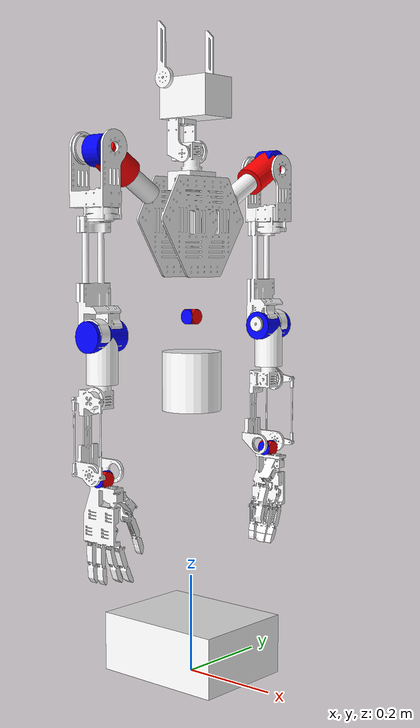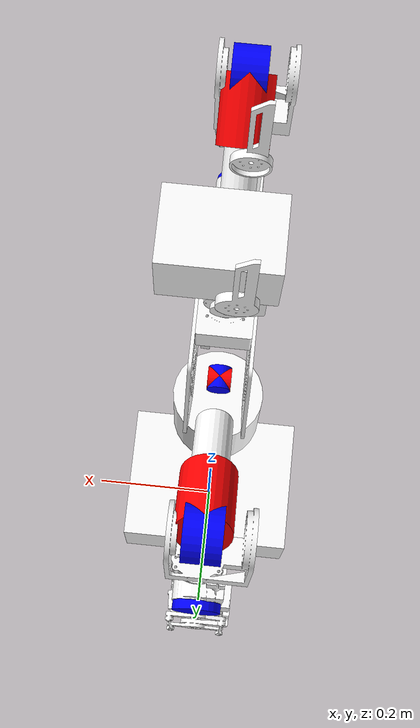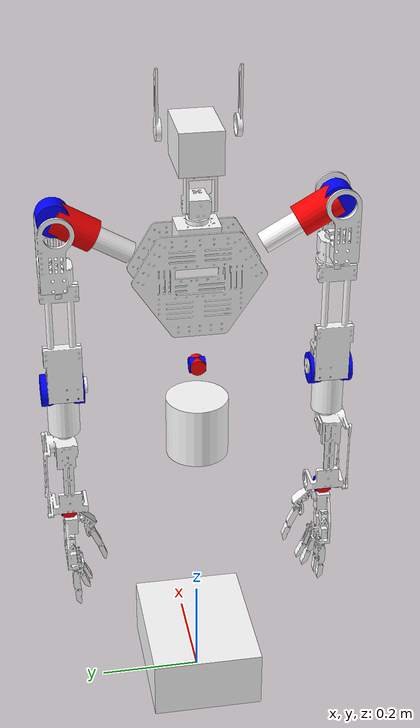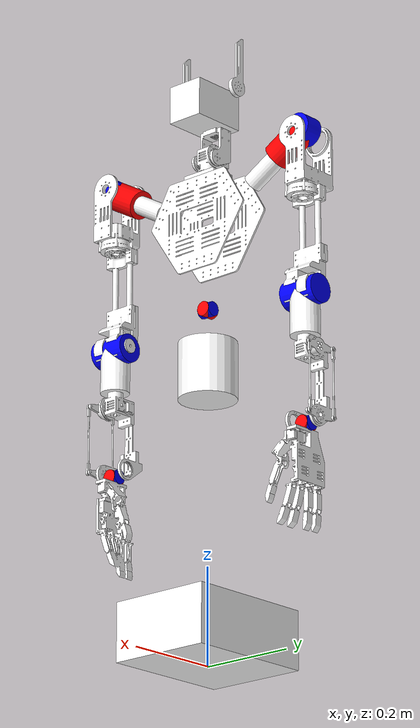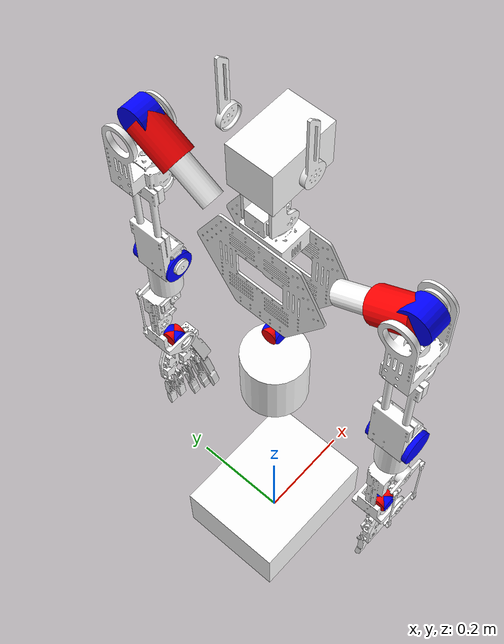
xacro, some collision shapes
<?xml version="1.0"?>

<!--Note that the inertia values are placeholder and need to be updated for proper physics simulation-->

<robot name="rx1" xmlns:xacro="http://ros.org/wiki/xacro">
    <xacro:property name="rx1_pi" value="3.1415" />
    <xacro:property name="motor_torque" value="50.0"/>
    <xacro:property name="motor_vec" value="15"/>

    <material name="red">
        <color rgba="1 0 0 1"/>
    </material>

    <material name="white">
        <color rgba="1 1 1 1"/>
    </material>

    <material name="blue">
        <color rgba="0 0 1 1"/>
    </material>

    <xacro:macro name="default_inertial" params="mass">
        <inertial>
            <mass value="${mass}" />
            <inertia ixx="1.0" ixy="0.0" ixz="0.0" iyy="1.0" iyz="0.0" izz="1.0" />
        </inertial>
    </xacro:macro>

    <link name="base_link">
        <inertial>
            <mass value="5.0" />
            <!-- Keep the root inertia physically valid for Gazebo Harmonic. -->
            <inertia ixx="0.18" ixy="0.0" ixz="0.0" iyy="0.16" iyz="0.0" izz="0.2" />
        </inertial>

        <visual>
            <geometry>
                <mesh filename="package://rx1_description/meshes/base_link.stl"/>
            </geometry>
            <material name="white"/>
        </visual>
        <collision>
            <geometry>
                <box size="0.28 0.22 0.12" />
            </geometry>
            <origin rpy="0 0 0" xyz="0 0 0.06"/>
        </collision>
        <collision>
            <geometry>
                <cylinder length="0.46" radius="0.045" />
            </geometry>
            <origin rpy="0 0 0" xyz="0 0 0.35"/>
        </collision>
    </link>

    <!--                            TORSO START                         -->
    <link name="torso_yaw_link">
        <inertial>
            <mass value="5.0" />
            <inertia ixx="1.0" ixy="0.0" ixz="0.0" iyy="1.0" iyz="0.0" izz="1.0" />
        </inertial>
        <visual>
            <geometry>
                <mesh filename="package://rx1_description/meshes/torso_yaw_link.stl"/>
            </geometry>
            <origin rpy="0 0 0" xyz="0 0 0"/>
            <material name="white"/>
        </visual>
        <collision>
            <geometry>
                <cylinder length="0.12" radius="0.06" />
            </geometry>
            <origin rpy="0 0 0" xyz="0 0 0.02"/>
        </collision>
    </link>
    <joint name="base2torso_yaw_joint" type="revolute">
        <axis xyz="0 0 1" />
        <limit effort="${motor_torque}" lower="${-0.5*rx1_pi}" upper="${0.5*rx1_pi}" velocity="${motor_vec}"/>
        <dynamics damping="0.5" friction="5.0" />
        <origin xyz="0 0 0.5825" rpy="0 0 0" />
        <parent link="base_link" />
        <child link="torso_yaw_link" />
    </joint>

    <link name="torso_pitch_link">
        <inertial>
            <mass value="0.5" />
            <inertia ixx="1.0" ixy="0.0" ixz="0.0" iyy="1.0" iyz="0.0" izz="1.0" />
        </inertial>
        <visual>
            <geometry>
                <cylinder length="0.03" radius="0.015" />
            </geometry>
            <origin rpy="${0.5*rx1_pi} 0 0" xyz="0 0 0"/>
            <material name="blue"/>
        </visual>
        <collision>
            <geometry>
                <cylinder length="0.03" radius="0.01" />
            </geometry>
            <origin rpy="${0.5*rx1_pi} 0 0" xyz="0 0 0"/>
        </collision>
    </link>
    <joint name="torso_yaw2pitch_joint" type="revolute">
        <axis xyz="0 1 0" />
        <limit effort="${motor_torque}" lower="${-0.25*rx1_pi}" upper="${0.25*rx1_pi}" velocity="${motor_vec}"/>
        <dynamics damping="0.5" friction="0.1" />
        <origin xyz="0 0 0.15" rpy="0 0 0" />
        <parent link="torso_yaw_link" />
        <child link="torso_pitch_link" />
    </joint>

    <link name="torso_roll_link">
        <inertial>
            <mass value="0.5" />
            <inertia ixx="1.0" ixy="0.0" ixz="0.0" iyy="1.0" iyz="0.0" izz="1.0" />
        </inertial>
        <visual>
            <geometry>
                <cylinder length="0.03" radius="0.015" />
            </geometry>
            <origin rpy="0 ${0.5*rx1_pi} 0" xyz="0 0 0"/>
            <material name="red"/>
        </visual>
        <collision>
            <geometry>
                <cylinder length="0.03" radius="0.01" />
            </geometry>
            <origin rpy="0 ${0.5*rx1_pi} 0" xyz="0 0 0"/>
        </collision>
    </link>
    <joint name="torso_pitch2roll_joint" type="revolute">
        <axis xyz="1 0 0" />
        <limit effort="${motor_torque}" lower="${-0.25*rx1_pi}" upper="${0.25*rx1_pi}" velocity="${motor_vec}"/>
        <dynamics damping="0.5" friction="0.1" />
        <origin xyz="0 0 0" rpy="0 0 0" />
        <parent link="torso_pitch_link" />
        <child link="torso_roll_link" />
    </joint>

    <link name="torso_link">
        <inertial>
            <mass value="1" />
            <inertia ixx="4.16666667e-06" ixy="0.0" ixz="0.0" iyy="6.6666666667e-6" iyz="0.0" izz="04.16666667e-06" />
        </inertial>
        <visual>
            <geometry>
                <!--box size="0.03 0.12 0.02" /-->
                <mesh filename="package://rx1_description/meshes/torso_link.stl"/>
            </geometry>
            <origin rpy="0 0 0" xyz="0 0 0"/>
            <material name="white"/>
        </visual>
        <collision>
            <geometry>
                <box size="0.16 0.12 0.16" />
            </geometry>
            <origin rpy="0 0 0" xyz="0 0 0.02"/>
        </collision>
    </link>
    <joint name="torso_roll2torso_joint" type="fixed">
        <origin xyz="0 0 0.08" rpy="0 0 0" />
        <parent link="torso_roll_link" />
        <child link="torso_link" />
    </joint>
    <!--                            TORSO END                         -->

    <!--                            HEAD START                        -->
    <link name="head_base_link">
        <inertial>
            <mass value="0.05" />
            <inertia ixx="4.16666667e-06" ixy="0.0" ixz="0.0" iyy="6.6666666667e-6" iyz="0.0" izz="04.16666667e-06" />
        </inertial>
        <visual>
            <geometry>
                <mesh filename="package://rx1_description/meshes/head/head_base_link.stl"/>
            </geometry>
            <origin rpy="0 0 0" xyz="0 0 0"/>
            <material name="white"/>
        </visual>
        <collision>
            <geometry>
                <box size="0.12 0.10 0.08" />
            </geometry>
            <origin rpy="0 0 0" xyz="0 0 0"/>
        </collision>
    </link>
    <joint name="torso2head_base_joint" type="fixed">
        <origin xyz="0 0 0.21" rpy="0 0 0" />
        <parent link="torso_link" />
        <child link="head_base_link" />
    </joint>

    <link name="neck_yaw_link">
        <inertial>
            <mass value="0.05" />
            <inertia ixx="4.16666667e-06" ixy="0.0" ixz="0.0" iyy="6.6666666667e-6" iyz="0.0" izz="04.16666667e-06" />
        </inertial>
        <visual>
            <geometry>
                <mesh filename="package://rx1_description/meshes/head/neck_yaw_link.stl"/>
            </geometry>
            <origin rpy="0 0 0" xyz="0 0 0"/>
            <material name="white"/>
        </visual>
        <collision>
            <geometry>
                <cylinder length="0.05" radius="0.04" />
            </geometry>
            <origin rpy="0 0 0" xyz="0 0 0.01"/>
        </collision>
    </link>
    <joint name="head_base2neck_yaw_joint" type="revolute">
        <axis xyz="0 0 1" />
        <limit effort="${motor_torque}" lower="${-0.5*rx1_pi}" upper="${0.5*rx1_pi}" velocity="${motor_vec}"/>
        <dynamics damping="0.5" friction="0.1" />
        <origin xyz="0 0 0" rpy="0 0 0" />
        <parent link="head_base_link" />
        <child link="neck_yaw_link" />
    </joint>

    <link name="neck_pitch_link">
        <inertial>
            <mass value="0.05" />
            <inertia ixx="4.16666667e-06" ixy="0.0" ixz="0.0" iyy="6.6666666667e-6" iyz="0.0" izz="04.16666667e-06" />
        </inertial>
        <visual>
            <geometry>
                <mesh filename="package://rx1_description/meshes/head/neck_pitch_link.stl"/>
            </geometry>
            <origin rpy="0 0 0" xyz="0 0 0"/>
            <material name="white"/>
        </visual>
        <collision>
            <geometry>
                <box size="0.09 0.06 0.06" />
            </geometry>
            <origin rpy="0 0 0" xyz="0 0 0.01"/>
        </collision>
    </link>
    <joint name="neck_yaw2pitch_joint" type="revolute">
        <axis xyz="0 1 0" />
        <limit effort="${motor_torque}" lower="${-0.5*rx1_pi}" upper="${0.5*rx1_pi}" velocity="${motor_vec}"/>
        <dynamics damping="0.5" friction="0.1" />
        <origin xyz="0 0 0.035" rpy="0 0 0" />
        <parent link="neck_yaw_link" />
        <child link="neck_pitch_link" />
    </joint>

    <link name="head_depth_cam_mount_link">
        <inertial>
            <mass value="0.05" />
            <inertia ixx="4.16666667e-06" ixy="0.0" ixz="0.0" iyy="6.6666666667e-6" iyz="0.0" izz="04.16666667e-06" />
        </inertial>
        <visual>
            <geometry>
                <mesh filename="package://rx1_description/meshes/head/head_depth_cam_mount_link.stl"/>
            </geometry>
            <origin rpy="0 0 0" xyz="0 0 0"/>
            <material name="white"/>
        </visual>
        <collision>
            <geometry>
                <box size="0.12 0.08 0.08" />
            </geometry>
            <origin rpy="0 0 0" xyz="0.02 0 0.01"/>
        </collision>
    </link>
    <joint name="neck_pitch2head_depth_cam_mount_joint" type="revolute">
        <axis xyz="1 0 0" />
        <limit effort="${motor_torque}" lower="${-0.5*rx1_pi}" upper="${0.5*rx1_pi}" velocity="${motor_vec}"/>
        <dynamics damping="0.1" friction="0.0" />
        <origin xyz="-0.01 0 0.1" rpy="0 0 0" />
        <parent link="neck_pitch_link" />
        <child link="head_depth_cam_mount_link" />
    </joint>

    <link name="camera_link">
        <inertial>
            <mass value="0.05" />
            <inertia ixx="4.16666667e-06" ixy="0.0" ixz="0.0" iyy="6.6666666667e-6" iyz="0.0" izz="04.16666667e-06" />
        </inertial>
        <visual>
            <geometry>
                <box size="0.01 0.01 0.01" />
            </geometry>
            <origin rpy="0 0 0" xyz="0 0 0"/>
            <material name="white"/>
        </visual>
        <collision>
            <geometry>
                <box size="0.01 0.01 0.01" />
            </geometry>
            <origin rpy="0 0 0" xyz="0 0 0"/>
        </collision>
    </link>
    <joint name="head_depth_cam_mount2camera_joint" type="fixed">
        <origin xyz="0.05 0 0.03" rpy="0 0 0" />
        <parent link="head_depth_cam_mount_link" />
        <child link="camera_link" />
    </joint>

    <link name="right_ear_link">
        <inertial>
            <mass value="0.05" />
            <inertia ixx="4.16666667e-06" ixy="0.0" ixz="0.0" iyy="6.6666666667e-6" iyz="0.0" izz="04.16666667e-06" />
        </inertial>
        <visual>
            <geometry>
                <mesh filename="package://rx1_description/meshes/head/right_ear_link.stl"/>
            </geometry>
            <origin rpy="0 0 0" xyz="0 0 0"/>
            <material name="white"/>
        </visual>
        <collision>
            <geometry>
                <box size="0.02 0.04 0.05" />
            </geometry>
            <origin rpy="0 0 0" xyz="0 -0.005 0"/>
        </collision>
    </link>
    <joint name="head_depth_cam_mount2right_ear_joint" type="revolute">
        <axis xyz="0 1 0" />
        <limit effort="${motor_torque}" lower="${-0.5*rx1_pi}" upper="${0.5*rx1_pi}" velocity="${motor_vec}"/>
        <dynamics damping="0.1" friction="0.0" />
        <origin xyz="0 -0.065 0.045" rpy="0 0 0" />
        <parent link="head_depth_cam_mount_link" />
        <child link="right_ear_link" />
    </joint>

    <link name="left_ear_link">
        <inertial>
            <mass value="0.05" />
            <inertia ixx="4.16666667e-06" ixy="0.0" ixz="0.0" iyy="6.6666666667e-6" iyz="0.0" izz="04.16666667e-06" />
        </inertial>
        <visual>
            <geometry>
                <mesh filename="package://rx1_description/meshes/head/left_ear_link.stl"/>
            </geometry>
            <origin rpy="0 0 0" xyz="0 0 0"/>
            <material name="white"/>
        </visual>
        <collision>
            <geometry>
                <box size="0.02 0.04 0.05" />
            </geometry>
            <origin rpy="0 0 0" xyz="0 0.005 0"/>
        </collision>
    </link>
    <joint name="head_depth_cam_mount2left_ear_joint" type="revolute">
        <axis xyz="0 1 0" />
        <limit effort="${motor_torque}" lower="${-0.5*rx1_pi}" upper="${0.5*rx1_pi}" velocity="${motor_vec}"/>
        <dynamics damping="0.1" friction="0.0" />
        <origin xyz="0 0.065 0.045" rpy="0 0 0" />
        <parent link="head_depth_cam_mount_link" />
        <child link="left_ear_link" />
    </joint>

    <!--                            HEAD END                           -->

    <!--                            ARM START                          -->
    <xacro:macro name="arm" params="prefix side">
        <link name="${prefix}_shoul_base_link">
            <inertial>
                <mass value="0.2" />
                <inertia ixx="4.16666667e-06" ixy="0.0" ixz="0.0" iyy="6.6666666667e-6" iyz="0.0" izz="04.16666667e-06" />
            </inertial>

            <visual>
                <geometry>
                    <cylinder length="0.075" radius="0.02" />
                </geometry>
                <origin rpy="0 0 0" xyz="0 0 0.0375"/>
                <material name="white"/>
            </visual>
            <collision>
                <geometry>
                    <cylinder length="0.075" radius="0.02" />
                </geometry>
                <origin rpy="0 0 0" xyz="0 0 0.0375"/>
            </collision>
        </link>
        <joint name="head_base2${prefix}_shoul_base_joint" type="fixed">
            <origin xyz="0 ${-0.12*side} -0.05" rpy="${0.3333*rx1_pi*side} 0 0" />
            <parent link="head_base_link" />
            <child link="${prefix}_shoul_base_link" />
        </joint>

        <link name="${prefix}_shoul_link">
            <inertial>
                <mass value="0.2" />
                <inertia ixx="1.0" ixy="0.0" ixz="0.0" iyy="1.0" iyz="0.0" izz="1.0" />
            </inertial>
            <visual>
                <geometry>
                    <cylinder length="0.08" radius="0.03" />
                </geometry>
                <origin rpy="0 0 0" xyz="0 0 0.04"/>
                <material name="red"/>
            </visual>
            <collision>
                <geometry>
                    <cylinder length="0.08" radius="0.03" />
                </geometry>
                <origin rpy="0 0 0" xyz="0 0 0.04"/>
            </collision>
        </link>
        <joint name="${prefix}_shoul_base2shoul_joint" type="revolute">
            <axis xyz="0 0 1" />
                <limit effort="${motor_torque}" lower="${-0.8*rx1_pi}" upper="${0.8*rx1_pi}" velocity="${motor_vec}"/>
            <dynamics damping="0.5" friction="0.1" />
            <origin xyz="0 0 0.075" rpy="0 0 0" />
            <parent link="${prefix}_shoul_base_link" />
            <child link="${prefix}_shoul_link" />
        </joint>

        <link name="${prefix}_shoul_rot_link">
            <inertial>
                <mass value="0.2" />
                <inertia ixx="1.0" ixy="0.0" ixz="0.0" iyy="1.0" iyz="0.0" izz="1.0" />
            </inertial>
            <visual>
                <geometry>
                    <cylinder length="0.04" radius="0.03" />
                </geometry>
                <origin rpy="0 ${0.5*rx1_pi} 0" xyz="0 0 0"/>
                <material name="blue"/>
            </visual>
            <collision>
                <geometry>
                    <cylinder length="0.04" radius="0.03" />
                </geometry>
                <origin rpy="0 ${0.5*rx1_pi} 0" xyz="0 0 0"/>
            </collision>
        </link>
        <joint name="${prefix}_shoul2shoul_rot_joint" type="revolute">
            <axis xyz="1 0 0" />
            <xacro:if value="${prefix == 'right'}">
                <limit effort="${motor_torque}" lower="${-0.5*rx1_pi}" upper="${0.16*rx1_pi}" velocity="${motor_vec}"/>
                <dynamics damping="0.5" friction="0.1" />
            </xacro:if>
            <xacro:if value="${prefix == 'left'}">
                <limit effort="${motor_torque}" lower="${-0.16*rx1_pi}" upper="${0.5*rx1_pi}" velocity="${motor_vec}"/>
                <dynamics damping="0.5" friction="0.1" />
            </xacro:if>
            <origin xyz="0 0 0.08" rpy="${-0.3333*rx1_pi*side} 0 0" />
            <parent link="${prefix}_shoul_link" />
            <child link="${prefix}_shoul_rot_link" />
        </joint>

        <link name="${prefix}_upper_arm_link">
           <inertial>
                <mass value="0.1" />
                <inertia ixx="1.0" ixy="0.0" ixz="0.0" iyy="1.0" iyz="0.0" izz="1.0" />
           </inertial>
           <visual>
                <geometry>
                    <!--cylinder length="0.085" radius="0.015" /-->
                    <mesh filename="package://rx1_description/meshes/${prefix}_arm/${prefix}_upper_arm_link.stl"/>
                </geometry>
                <origin rpy="0 0 0" xyz="0 0 0"/>
                <material name="white"/>
            </visual>
            <collision>
                <geometry>
                    <box size="0.08 0.08 0.14" />
                </geometry>
                <origin rpy="0 0 0" xyz="0 0 -0.03"/>
            </collision>
        </link>
        <joint name="${prefix}_shoul_rot2upper_arm_joint" type="fixed">
            <origin xyz="0 0 -0.0625" rpy="0 0 0" />
            <parent link="${prefix}_shoul_rot_link" />
            <child link="${prefix}_upper_arm_link" />
        </joint>

        <link name="${prefix}_armrot_link">
            <inertial>
                <mass value="0.1" />
                <inertia ixx="1.0" ixy="0.0" ixz="0.0" iyy="1.0" iyz="0.0" izz="1.0" />
            </inertial>
            <visual>
                <geometry>
                    <!--cylinder length="0.22" radius="0.03" /-->
                    <mesh filename="package://rx1_description/meshes/${prefix}_arm/${prefix}_elbow_link.stl"/>
                </geometry>
                <origin rpy="0 0 0" xyz="0 0 -0.11"/>
                <material name="white"/>
            </visual>
            <collision>
                <geometry>
                    <cylinder length="0.22" radius="0.03" />
                </geometry>
                <origin rpy="0 0 0" xyz="0 0 -0.11"/>
            </collision>
        </link>
        <joint name="${prefix}_arm2armrot_joint" type="revolute">
            <axis xyz="0 0 1" />
            <limit effort="${motor_torque}" lower="${-0.5*rx1_pi}" upper="${0.5*rx1_pi}" velocity="${motor_vec}"/>
            <dynamics damping="0.1" friction="0.1" />
            <origin xyz="0 0 -0.0625" rpy="0 0 0" />
            <parent link="${prefix}_upper_arm_link" />
            <child link="${prefix}_armrot_link" />
        </joint>

        <link name="${prefix}_elbow_link">
            <inertial>
                <mass value="0.1" />
                <inertia ixx="1.0" ixy="0.0" ixz="0.0" iyy="1.0" iyz="0.0" izz="1.0" />
            </inertial>
            <visual>
                <geometry>
                    <cylinder length="0.08" radius="0.03" />
                </geometry>
                <origin rpy="0 ${0.5*rx1_pi*side} -${0.5*rx1_pi}" xyz="0 0 0"/>
                <material name="blue"/>
            </visual>
            <collision>
                <geometry>
                    <cylinder length="0.08" radius="0.03" />
                </geometry>
                <origin rpy="0 ${0.5*rx1_pi*side} -${0.5*rx1_pi}" xyz="0 0 0"/>
            </collision>
        </link>
        <joint name="${prefix}_armrot2elbow_joint" type="revolute">
            <axis xyz="0 1 0" />
            <limit effort="${motor_torque}" lower="${-0.7*rx1_pi}" upper="0" velocity="${motor_vec}"/>
            <dynamics damping="0.1" friction="0.1" />
            <origin xyz="0 0 -0.22" rpy="0 0 0" />
            <parent link="${prefix}_armrot_link" />
            <child link="${prefix}_elbow_link" />
        </joint>

        <link name="${prefix}_forearm_link">
            <inertial>
                <mass value="0.1" />
                <inertia ixx="1.0" ixy="0.0" ixz="0.0" iyy="1.0" iyz="0.0" izz="1.0" />
            </inertial>
            <visual>
                <geometry>
                    <cylinder length="0.09" radius="0.03" />
                </geometry>
                <origin rpy="0 0 0" xyz="0 0 0"/>
                <material name="white"/>
            </visual>
            <collision>
                <geometry>
                    <cylinder length="0.09" radius="0.03" />
                </geometry>
                <origin rpy="0 0 0" xyz="0 0 0"/>
            </collision>
        </link>
        <joint name="${prefix}_elbow2forearm_joint" type="fixed">
            <origin xyz="0 0 -0.045" rpy="0 0 0" />
            <parent link="${prefix}_elbow_link" />
            <child link="${prefix}_forearm_link" />
        </joint>

        <link name="${prefix}_forearmrot_link">
            <inertial>
                <mass value="0.1" />
                <inertia ixx="1.0" ixy="0.0" ixz="0.0" iyy="1.0" iyz="0.0" izz="1.0" />
            </inertial>
            <visual>
                <geometry>
                    <!--cylinder length="0.18" radius="0.015" /-->
                    <mesh filename="package://rx1_description/meshes/${prefix}_arm/${prefix}_forearm_link.stl"/>
                </geometry>
                <origin rpy="0 0 0" xyz="0 0 -0.09"/>
                <material name="white"/>
            </visual>
            <collision>
                <geometry>
                    <cylinder length="0.18" radius="0.015" />
                </geometry>
                <origin rpy="0 0 0" xyz="0 0 -0.09"/>
            </collision>
        </link>
        <joint name="${prefix}_forearm2forearmrot_joint" type="revolute">
            <axis xyz="0 0 1" />
            <limit effort="${motor_torque}" lower="${-0.5*rx1_pi}" upper="${0.5*rx1_pi}" velocity="${motor_vec}"/>
            <dynamics damping="0.1" friction="0.1" />
            <origin xyz="0 0 -0.045" rpy="0 0 0" />
            <parent link="${prefix}_forearm_link" />
            <child link="${prefix}_forearmrot_link" />
        </joint>

        <link name="${prefix}_forearm_pitch_link">
            <inertial>
                <mass value="0.1" />
                <inertia ixx="1.0" ixy="0.0" ixz="0.0" iyy="1.0" iyz="0.0" izz="1.0" />
            </inertial>
            <visual>
                <geometry>
                    <cylinder length="0.03" radius="0.015" />
                </geometry>
            <origin rpy="${0.5*rx1_pi*side} 0 0" xyz="0 0 0"/>
                <material name="blue"/>
            </visual>
            <collision>
                <geometry>
                    <cylinder length="0.03" radius="0.01" />
                </geometry>
                <origin rpy="${0.5*rx1_pi*side} 0 0" xyz="0 0 0"/>
            </collision>
        </link>
        <joint name="${prefix}_forearmrot2forearm_pitch_joint" type="revolute">
            <axis xyz="0 1 0" />
            <limit effort="${motor_torque}" lower="${-0.25*rx1_pi}" upper="${0.25*rx1_pi}" velocity="${motor_vec}"/>
            <dynamics damping="0.1" friction="0.1" />
            <origin xyz="0 0 -0.18" rpy="0 0 0" />
            <parent link="${prefix}_forearmrot_link" />
            <child link="${prefix}_forearm_pitch_link" />
        </joint>

        <link name="${prefix}_forearm_roll_link">
            <inertial>
                <mass value="0.1" />
                <inertia ixx="1.0" ixy="0.0" ixz="0.0" iyy="1.0" iyz="0.0" izz="1.0" />
            </inertial>
            <visual>
                <geometry>
                    <cylinder length="0.03" radius="0.015" />
                </geometry>
            <origin rpy="0 ${0.5*rx1_pi*side} 0" xyz="0 0 0"/>
                <material name="red"/>
            </visual>
            <collision>
                <geometry>
                    <cylinder length="0.03" radius="0.01" />
                </geometry>
                <origin rpy="0 ${0.5*rx1_pi*side} 0" xyz="0 0 0"/>
            </collision>
        </link>
        <joint name="${prefix}_forearm_pitch2forearm_roll_joint" type="revolute">
            <axis xyz="1 0 0" />
            <limit effort="${motor_torque}" lower="${-0.25*rx1_pi}" upper="${0.25*rx1_pi}" velocity="${motor_vec}"/>
            <dynamics damping="0.1" friction="0.1" />
            <origin xyz="0 0 0" rpy="0 0 0" />
            <parent link="${prefix}_forearm_pitch_link" />
            <child link="${prefix}_forearm_roll_link" />
        </joint>

        <link name="${prefix}_hand_link">
            <inertial>
                <mass value="0.1" />
                <inertia ixx="1.0" ixy="0.0" ixz="0.0" iyy="1.0" iyz="0.0" izz="1.0" />
            </inertial>
            <visual>
                <geometry>
                    <!--box size="0.04 0.02 0.12" /-->
                    <mesh filename="package://rx1_description/meshes/${prefix}_arm/${prefix}_hand_link.stl"/>
                </geometry>
                <origin rpy="0 0 0" xyz="0 0 0"/>
                <material name="white"/>
            </visual>
            <collision>
                <geometry>
                    <box size="0.04 0.02 0.12" />
                </geometry>
                <origin rpy="0 0 0" xyz="0 0 0"/>
            </collision>
        </link>
        <joint name="${prefix}_forearm_roll2hand_joint" type="fixed">
            <origin xyz="0 0 -0.1" rpy="0 0 0" />
            <parent link="${prefix}_forearm_roll_link" />
            <child link="${prefix}_hand_link" />
        </joint>

    </xacro:macro>

    <xacro:arm prefix="right" side="1" />
    <xacro:arm prefix="left" side="-1" />

    <!--                            ARM END                             -->

</robot>
